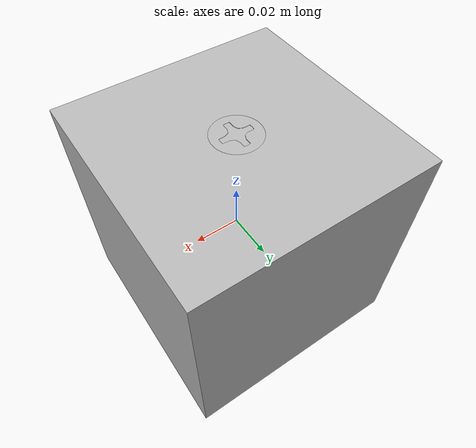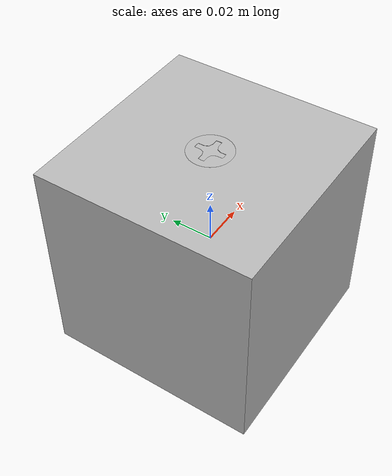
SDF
<?xml version='1.0'?>
<sdf version='1.6'>
  <model name='screw_block'>
    <link name='block'>
      <pose frame=''>0 0 0 0 -0 0</pose>
      <inertial>
        <mass>0.1588</mass>
        <inertia>
          <ixx>0.466045</ixx>
          <ixy>0</ixy>
          <ixz>0</ixz>
          <iyy>0.466045</iyy>
          <iyz>0</iyz>
          <izz>0.264667</izz>
        </inertia>
        <pose frame=''>0 0 0 0 -0 0</pose>
      </inertial>
      <self_collide>0</self_collide>
      <kinematic>1</kinematic>
      <gravity>1</gravity>
      <visual name='visual'>
        <pose frame=''>0 0 0 0 -0 0</pose>
        <geometry>
          <box>
            <size>0.1 0.1 0.1</size>
          </box>
        </geometry>
        <cast_shadows>1</cast_shadows>
        <transparency>0</transparency>
        <material>
          <emissive>0 0 0 1</emissive>
          <shader type='vertex'>
            <normal_map>__default__</normal_map>
          </shader>
        </material>
      </visual>
      <collision name='collision'>
        <laser_retro>0</laser_retro>
        <max_contacts>10</max_contacts>
        <pose frame=''>0 0 0 0 -0 0</pose>
        <geometry>
          <box>
            <size>0.1 0.1 0.1</size>
          </box>
        </geometry>
        <surface>
          <friction>
            <ode>
              <mu>1</mu>
              <mu2>1</mu2>
              <fdir1>0 0 0</fdir1>
              <slip1>0</slip1>
              <slip2>0</slip2>
            </ode>
            <torsional>
              <coefficient>1</coefficient>
              <patch_radius>0</patch_radius>
              <surface_radius>0</surface_radius>
              <use_patch_radius>1</use_patch_radius>
              <ode>
                <slip>0</slip>
              </ode>
            </torsional>
          </friction>
          <bounce>
            <restitution_coefficient>0</restitution_coefficient>
            <threshold>1e+06</threshold>
          </bounce>
          <contact>
            <collide_without_contact>0</collide_without_contact>
            <collide_without_contact_bitmask>1</collide_without_contact_bitmask>
            <collide_bitmask>1</collide_bitmask>
            <ode>
              <soft_cfm>0</soft_cfm>
              <soft_erp>0.2</soft_erp>
              <kp>1e+13</kp>
              <kd>1</kd>
              <max_vel>0.01</max_vel>
              <min_depth>0</min_depth>
            </ode>
            <bullet>
              <split_impulse>1</split_impulse>
              <split_impulse_penetration_threshold>-0.01</split_impulse_penetration_threshold>
              <soft_cfm>0</soft_cfm>
              <soft_erp>0.2</soft_erp>
              <kp>1e+13</kp>
              <kd>1</kd>
            </bullet>
          </contact>
        </surface>
      </collision>
    </link>
    <link name='screw'>
      <pose frame=''>0 0 0.043625 0 -0 0</pose>
      <inertial>
        <mass>0.004</mass>
        <inertia>
          <ixx>0.024827</ixx>
          <ixy>0</ixy>
          <ixz>0</ixz>
          <iyy>0.024827</iyy>
          <iyz>0</iyz>
          <izz>0.0134645</izz>
        </inertia>
        <pose frame=''>0 0 0 0 -0 0</pose>
      </inertial>
      <self_collide>0</self_collide>
      <kinematic>1</kinematic>
      <gravity>1</gravity>
      <visual name='visual'>
        <pose frame=''>0 0 0 0 -0 0</pose>
        <geometry>
          <mesh>
            <uri>/home/rlmachine/model_editor_models/screw_block/screw.stl</uri>
            <scale>0.005 0.005 0.005</scale>
          </mesh>
        </geometry>
        <cast_shadows>1</cast_shadows>
        <transparency>0</transparency>
        <material>
          <emissive>0 0 0 1</emissive>
          <shader type='vertex'>
            <normal_map>__default__</normal_map>
          </shader>
        </material>
      </visual>
      <collision name='collision'>
        <laser_retro>0</laser_retro>
        <max_contacts>10</max_contacts>
        <pose frame=''>0 0 0 0 -0 0</pose>
        <geometry>
          <mesh>
            <uri>/home/rlmachine/model_editor_models/screw_block/screw.stl</uri>
          </mesh>
        </geometry>
        <surface>
          <friction>
            <ode>
              <mu>1</mu>
              <mu2>1</mu2>
              <fdir1>0 0 0</fdir1>
              <slip1>0</slip1>
              <slip2>0</slip2>
            </ode>
            <torsional>
              <coefficient>1</coefficient>
              <patch_radius>0</patch_radius>
              <surface_radius>0</surface_radius>
              <use_patch_radius>1</use_patch_radius>
              <ode>
                <slip>0</slip>
              </ode>
            </torsional>
          </friction>
          <bounce>
            <restitution_coefficient>0</restitution_coefficient>
            <threshold>1e+06</threshold>
          </bounce>
          <contact>
            <collide_without_contact>0</collide_without_contact>
            <collide_without_contact_bitmask>1</collide_without_contact_bitmask>
            <collide_bitmask>1</collide_bitmask>
            <ode>
              <soft_cfm>0</soft_cfm>
              <soft_erp>0.2</soft_erp>
              <kp>1e+13</kp>
              <kd>1</kd>
              <max_vel>0.01</max_vel>
              <min_depth>0</min_depth>
            </ode>
            <bullet>
              <split_impulse>1</split_impulse>
              <split_impulse_penetration_threshold>-0.01</split_impulse_penetration_threshold>
              <soft_cfm>0</soft_cfm>
              <soft_erp>0.2</soft_erp>
              <kp>1e+13</kp>
              <kd>1</kd>
            </bullet>
          </contact>
        </surface>
      </collision>
    </link>
    <joint name='block_JOINT_0' type='screw'>
      <parent>block</parent>
      <child>screw</child>
      <pose frame=''>0 0 0 0 -0 0</pose>
      <axis>
        <xyz>0 0.04 1</xyz>
        <use_parent_model_frame>0</use_parent_model_frame>
        <limit>
          <lower>0</lower>
          <upper>38</upper>
          <effort>-1</effort>
          <velocity>-1</velocity>
        </limit>
        <dynamics>
          <spring_reference>0</spring_reference>
          <spring_stiffness>0</spring_stiffness>
          <damping>0</damping>
          <friction>0</friction>
        </dynamics>
      </axis>
      <physics>
        <ode>
          <limit>
            <cfm>0</cfm>
            <erp>0.2</erp>
          </limit>
          <suspension>
            <cfm>0</cfm>
            <erp>0.2</erp>
          </suspension>
        </ode>
      </physics>
    </joint>
    <static>0</static>
    <allow_auto_disable>1</allow_auto_disable>
  </model>
</sdf>
